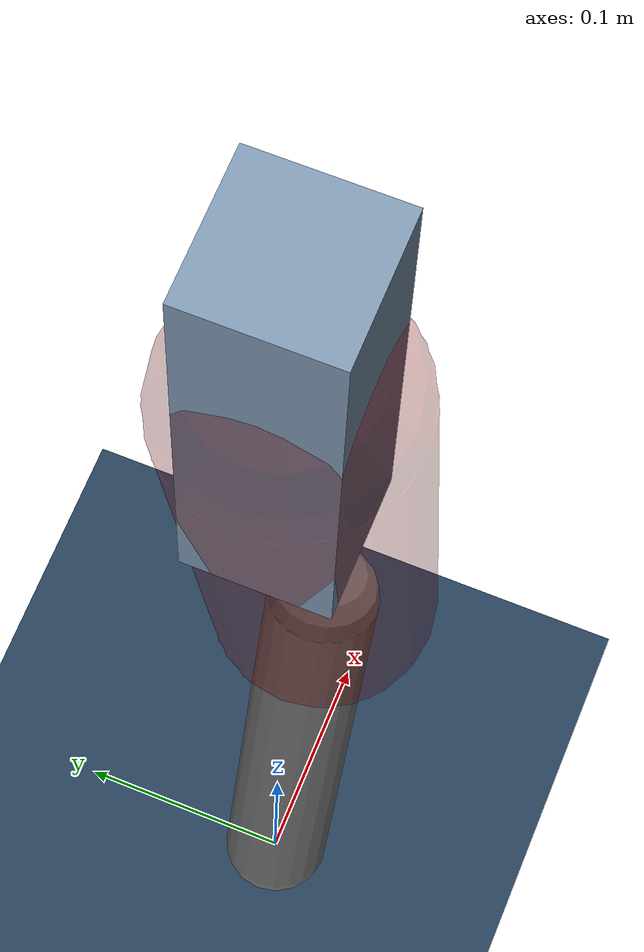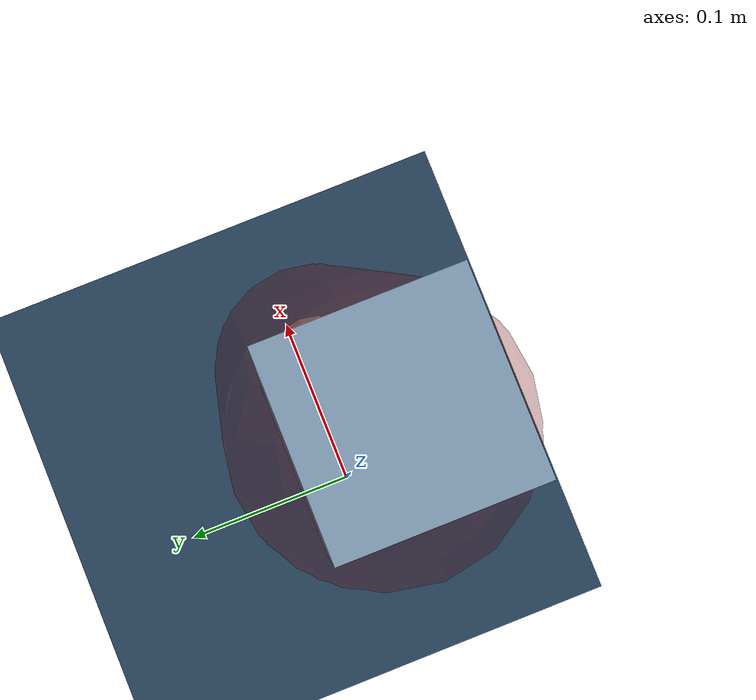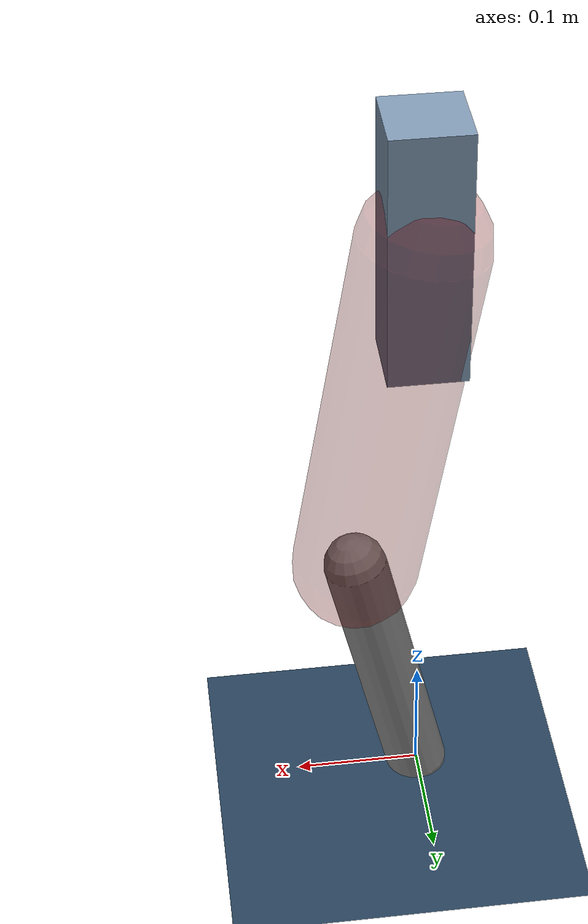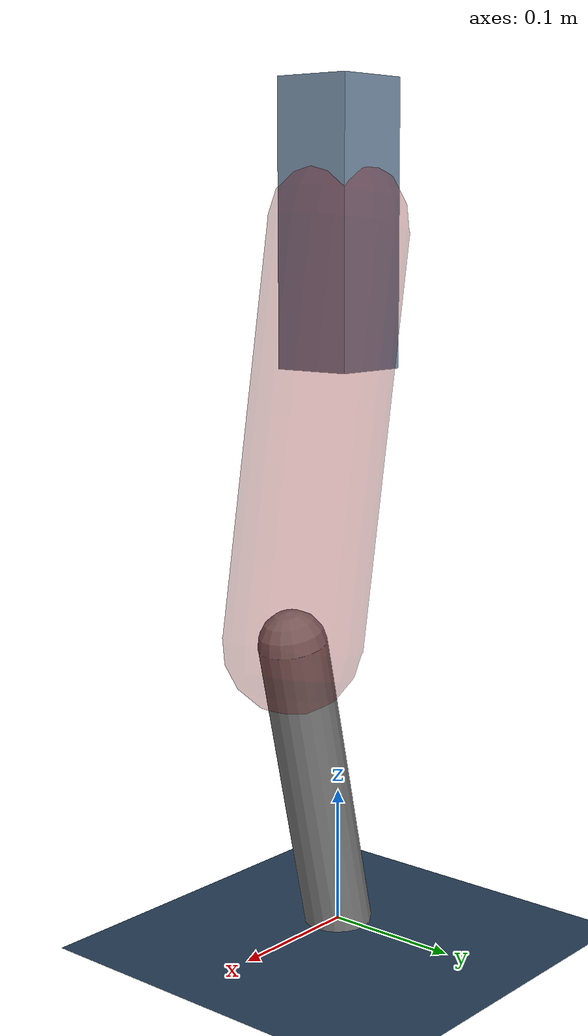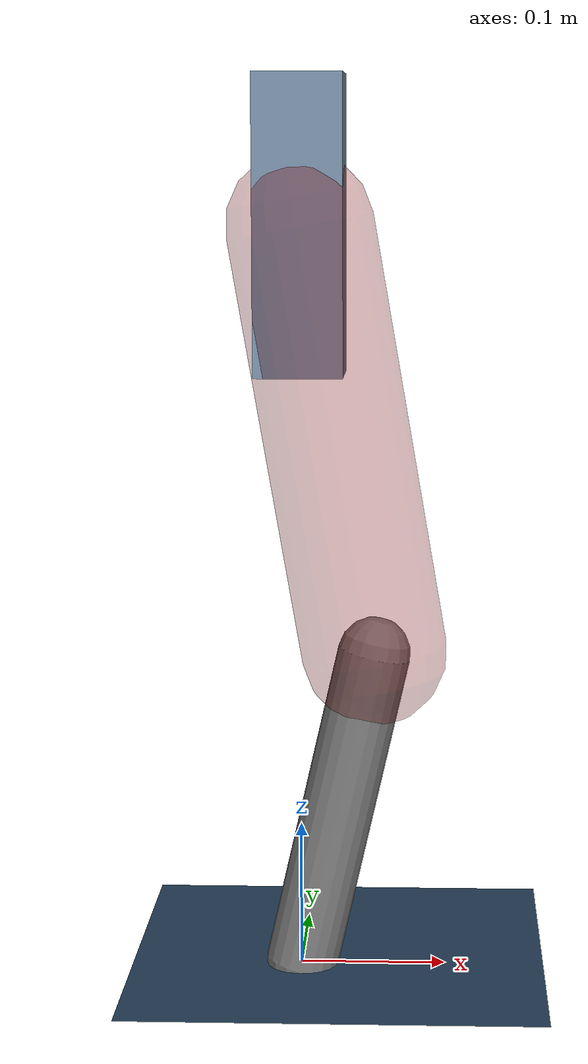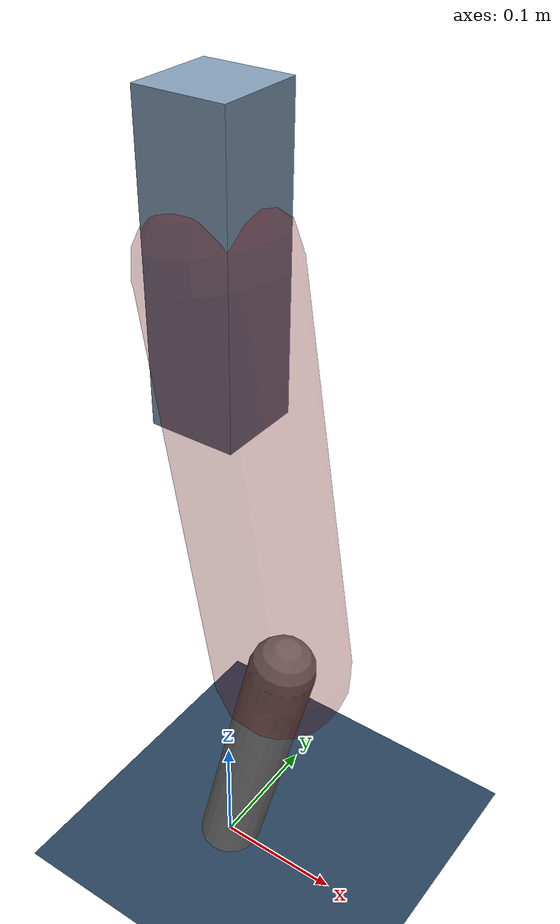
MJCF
<mujoco model="Hopper2D">
	<compiler inertiafromgeom="true" angle="radian" />
	<option timestep="0.001" integrator="implicit" cone="elliptic" solver="Newton" tolerance="1e-10" />

	<default>
		<geom contype="1" conaffinity="1" condim="3" friction="2 0.005 0.0001" solref="0.005 1" />
		<joint limited="true" damping="0.1" />
	</default>

	<asset>
		<texture name="skybox" type="skybox" builtin="gradient" rgb1=".4 .6 .8" rgb2="0 0 0" width="800" height="800" />
		<texture name="grid" type="2d" builtin="checker" rgb1=".1 .2 .3" rgb2=".2 .3 .4" width="300" height="300" mark="edge" markrgb=".2 .3 .4" />
		<material name="ground" texture="grid" texrepeat="1 1" texuniform="true" reflectance="0.1" />
		<material name="leg" rgba="0.5 0.6 0.7 1" />
	</asset>

	<worldbody>

		<geom name="floor" type="plane" size="5 5 0.25" material="ground" />

		<light directional="false" diffuse="0.8 0.8 0.8" specular="0.3 0.3 0.3" pos="0 0 2" dir="0 0 -1" />
		<light mode="targetbodycom" target="base" directional="false" diffuse="0.8 0.8 0.8" specular="0.3 0.3 0.3" pos="0 0 2" dir="0 0 -1" />

		<camera name="fixed" pos="0 -2 1" xyaxes="1 0 0 0 0 1" />
		<camera name="tracking" mode="trackcom" pos="0 -3 1" />

		<body name="root" pos="0 0 0.5131298955372532">
			<joint name="slide_x" type="slide" axis="1 0 0" range="-100 100" />
			<joint name="slide_z" type="slide" axis="0 0 1" range="0 10" />

			<body name="base" pos="0 0 0">
				<geom name="torso" type="box" size="0.03 0.03 0.1" mass="3.083" material="leg" />

				<body name="link1" pos="0 0 0" euler="0 1.399259439440637 0">
					<joint type="hinge" axis="0 -1 0" pos="0 0 0" name="hinge1" limited="true" range="-3.14 3.14" stiffness="0" damping="0.1" />
					<geom name="thigh" type="capsule" fromto="0 0 0 0.2955522749698207 0 0" size="0.05" rgba="0.5 0 0 0.3" mass="0.9767359149215339" />

					<body name="link2" pos="0.2955522749698207 0 0" euler="0 0.3950758912142626 0">
						<joint type="hinge" axis="0 -1 0" pos="0 0 0" name="hinge2" limited="true" range="-3.14 3.14" stiffness="0" damping="0.1" />
						<geom name="shank" type="capsule" fromto="0 0 0 0.22757762056743253 0 0" size="0.025" mass="0.423962096453946" />

					</body>
				</body>
			</body>
		</body>
	</worldbody>

	<actuator>
		<motor name="torque1" joint="hinge1" ctrlrange="-94.71234861891553 94.71234861891553" ctrllimited="true" gear="1" />
		<motor name="torque2" joint="hinge2" ctrlrange="-96.25900386924265 96.25900386924265" ctrllimited="true" gear="1" />
	</actuator>
</mujoco>
